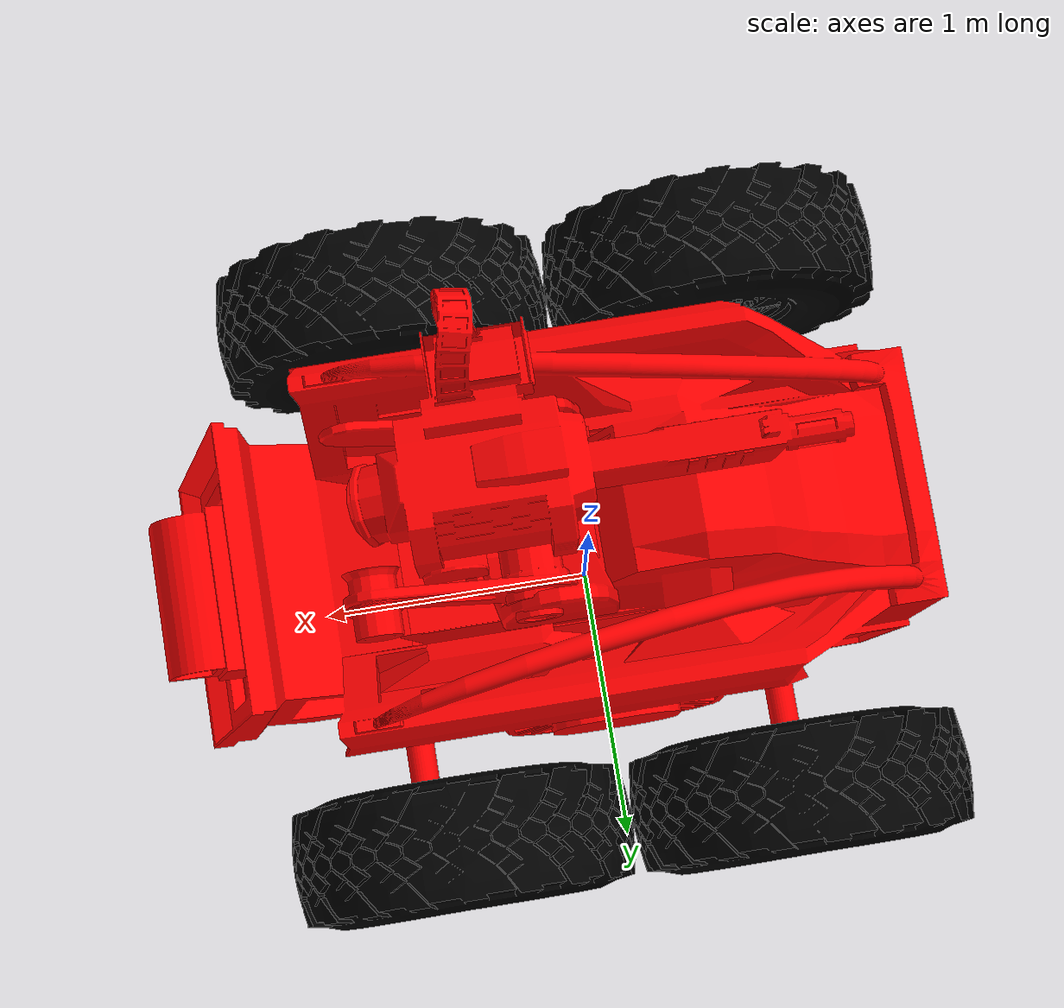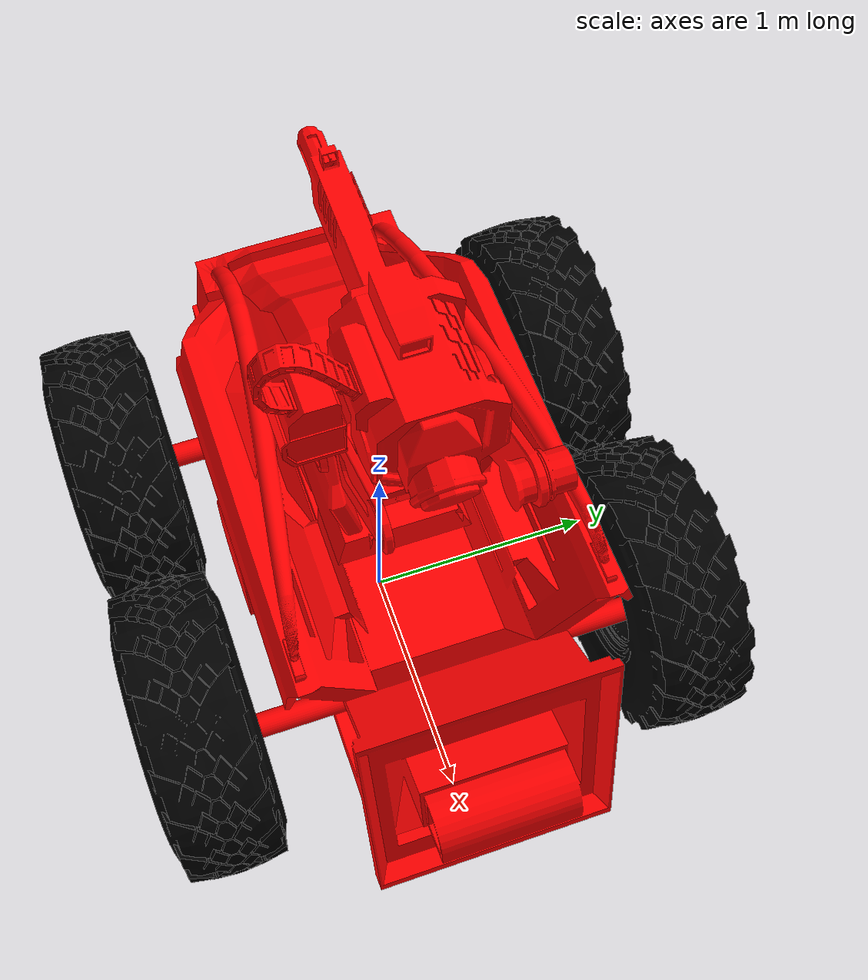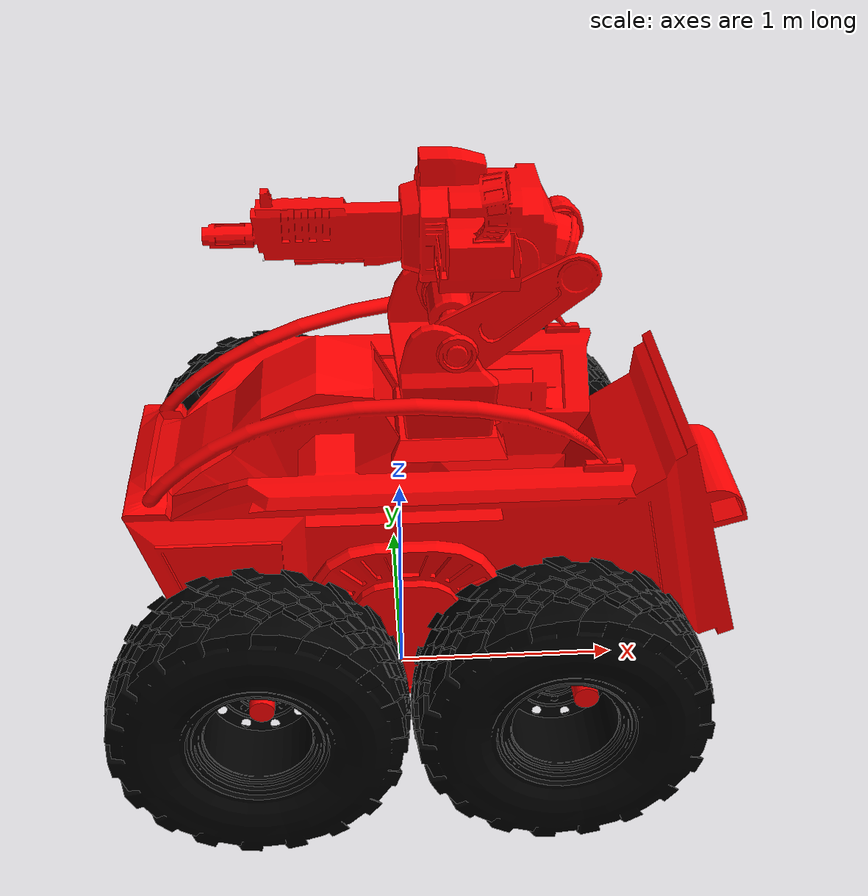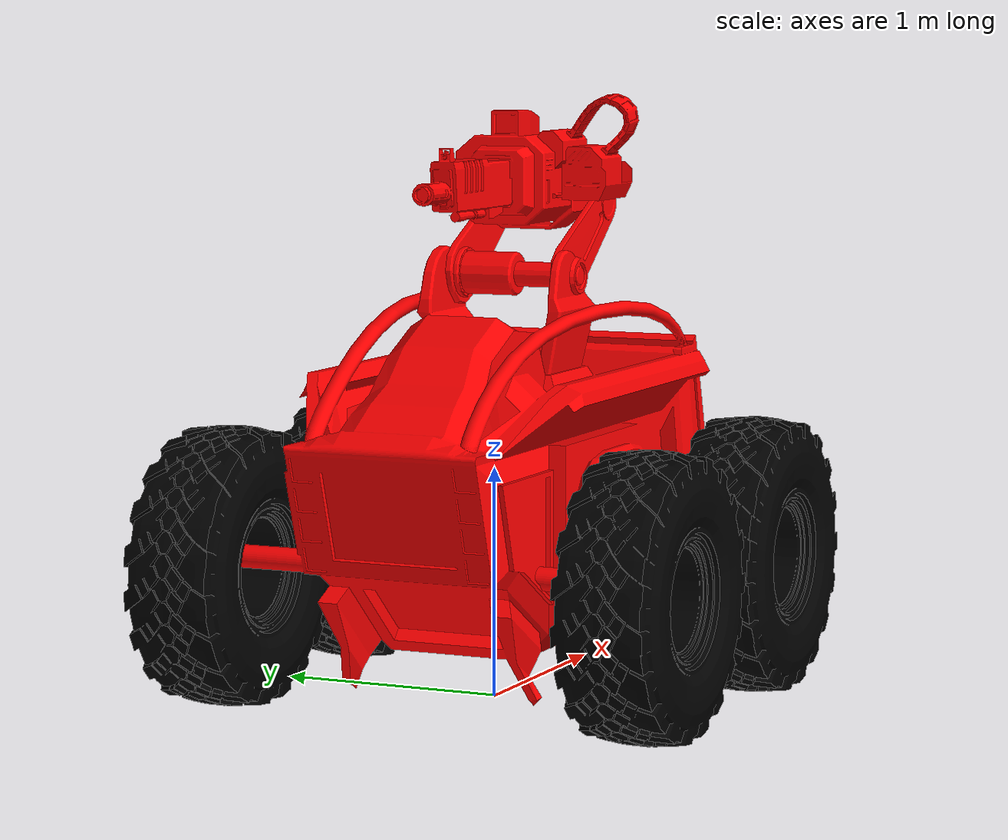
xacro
<?xml version="1.0"?>
<robot xmlns:xacro="http://www.ros.org/wiki/xacro"  name="robot">

    <xacro:include filename="robot_core.urdf.xacro" />
    <xacro:include filename="gazebo_control.xacro" />
    <xacro:include filename="inertial_macros.xacro" />
    <xacro:include filename="joint_public.xacro" />
    <xacro:include filename="turret_transmission.xacro" />
    <xacro:include filename="arm_transmission.xacro" />
    <xacro:include filename="robot_control.urdf.xacro" />
    <xacro:include filename="bullet_transmission.xacro" />
    <xacro:include filename="lidar.xacro" />

    <ros2_control name="gripper_robot_gazebo_system" type="system">
        <hardware>
            <plugin>gazebo_ros2_control/GazeboSystem</plugin>
        </hardware>
        <xacro:arm_transmission/>
        <xacro:turret_transmission/>
        <xacro:bullet_transmission/>
    </ros2_control>
    <xacro:missile_controller/>
</robot>

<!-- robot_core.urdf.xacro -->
<robot xmlns:xacro="http://www.ros.org/wiki/xacro" >

    <xacro:include filename="inertial_macros.xacro" />

    <material name="white">
        <color rgba="1 1 1 1" />
    </material>

    <material name="orange">
        <color rgba="1 0.3 0.1 1"/>
    </material>

    <material name="blue">
        <color rgba="0.2 0.2 1 1"/>
    </material>

    <material name="black">
        <color rgba="0 0 0 1"/>
    </material>

    <material name="red">
        <color rgba="1 0 0 1"/>
    </material>

    <material name="green">
        <color rgba="0 1 1 1"/>
    </material>

<!-- BASE LINK -->

    <link name="base_link">
    </link>

<!-- BASE -->

    <link name="chassis">
        <visual>
            <geometry>
                <mesh filename="file://$(find articubot_one)/description/dae/Base.dae" scale="1 1 1"/>
            </geometry>
            <material name="red"/>
        </visual>
        <collision>
             <geometry>
                <mesh filename="file://$(find articubot_one)/description/dae/Base.dae" scale="1 1 1"/>
             </geometry>
         </collision>
         <xacro:inertial_box mass="100" x="0.4" y="0.4" z="0.06">
             <origin xyz="0 0 0" rpy="0 0 0"/>
         </xacro:inertial_box>
    </link>

    <gazebo reference="chassis">
        <material>Gazebo/Orgy</material>
    </gazebo>

    <joint name="base_footprint_joint" type="fixed">
         <parent link="base_link"/>
         <child link="base_footprint"/>
         <origin xyz="0 0 0" rpy="0 0 0"/>
    </joint>

    <link name="base_footprint"></link>

    <joint name="chassis_joint" type="fixed">
         <parent link="base_link"/>
         <child link="chassis"/>
         <origin xyz="0 0 0.72409"/>
    </joint>

<!-- Right Front Wheel-->

    <joint name="right_front_wheel_joint" type="continuous">
        <parent link="base_link"/>
        <child link="right_front_wheel"/>
        <origin xyz="-0.6007 0.96358 0.5985" rpy="0 0 0"/>
        <axis xyz="0 -1 0"/>
    </joint>

    <link name="right_front_wheel">
        <visual>
            <geometry>
                <mesh filename="file://$(find articubot_one)/description/dae/Front_R_Wheel.dae" scale="1 1 1"/>
            </geometry>
            <material name="black"/>
        </visual>
        <collision>
             <geometry>
                <mesh filename="file://$(find articubot_one)/description/dae/Front_R_Wheel.dae" scale="1 1 1"/>
             </geometry>
         </collision>
         <xacro:inertial_cylinder mass="100" length="0.08" radius="0.4">
            <origin xyz="0 0 0" rpy="0 0 0"/>
         </xacro:inertial_cylinder>
    </link>

    <gazebo reference="right_front_wheel">
        <material>Gazebo/Black</material>
    </gazebo>

<!-- Right Back Wheel -->

    <joint name="right_back_wheel_joint" type="continuous">
        <parent link="base_link"/>
        <child link="right_back_wheel"/>
        <origin xyz="0.6007 0.96358 0.5985" rpy="0 0 0"/>
        <axis xyz="0 -1 0"/>
    </joint>

    <link name="right_back_wheel">
        <visual>
            <geometry>
                <mesh filename="file://$(find articubot_one)/description/dae/Back_R_Wheel.dae" scale="1 1 1"/>
            </geometry>
            <material name="black"/>
        </visual>
        <collision>
             <geometry>
                <mesh filename="file://$(find articubot_one)/description/dae/Back_R_Wheel.dae" scale="1 1 1"/>
             </geometry>
         </collision>
         <xacro:inertial_cylinder mass="20" length="0.08" radius="0.4">
            <origin xyz="0 0 0" rpy="0 0 0"/>
         </xacro:inertial_cylinder>
    </link>

    <gazebo reference="right_back_wheel">
        <material>Gazebo/Black</material>
    </gazebo>

<!-- left Front Wheel -->

    <joint name="left_front_wheel_joint" type="continuous">
        <parent link="base_link"/>
        <child link="left_front_wheel"/>
        <origin xyz="-0.6007 -0.96358 0.5985" rpy="0 0 0"/>
        <axis xyz="0 -1 0"/>
    </joint>

    <link name="left_front_wheel">
        <visual>
            <geometry>
                <mesh filename="file://$(find articubot_one)/description/dae/Front_L_Wheel.dae" scale="1 1 1"/>
            </geometry>
            <material name="black"/>
        </visual>
        <collision>
             <geometry>
                <mesh filename="file://$(find articubot_one)/description/dae/Front_L_Wheel.dae" scale="1 1 1"/>
             </geometry>
         </collision>
         <xacro:inertial_cylinder mass="100" length="0.08" radius="0.4">
            <origin xyz="0 0 0" rpy="0 0 0"/>
         </xacro:inertial_cylinder>
    </link>

    <gazebo reference="left_front_wheel">
        <material>Gazebo/Black</material>
    </gazebo>

<!-- left Back Wheel -->

    <joint name="left_back_wheel_joint" type="continuous">
        <parent link="base_link"/>
        <child link="left_back_wheel"/>
        <origin xyz="0.6007 -0.96358 0.5985" rpy="0 0 0"/>
        <axis xyz="0 -1 0"/>
    </joint>

    <link name="left_back_wheel">
        <visual>
            <geometry>
                <mesh filename="file://$(find articubot_one)/description/dae/Back_L_Wheel.dae" scale="1 1 1"/>
            </geometry>
            <material name="black"/>
        </visual>
        <collision>
             <geometry>
                <mesh filename="file://$(find articubot_one)/description/dae/Back_L_Wheel.dae" scale="1 1 1"/>
             </geometry>
         </collision>
         <xacro:inertial_cylinder mass="20" length="0.08" radius="0.4">
            <origin xyz="0 0 0" rpy="0 0 0"/>
         </xacro:inertial_cylinder>
    </link>

    <gazebo reference="left_back_wheel">
        <material>Gazebo/Black</material>
    </gazebo>

<!-- stand -->

    <link name="stand">
        <visual>
            <geometry>
                <mesh filename="file://$(find articubot_one)/description/dae/Stand.dae" scale="1 1 1"/>
            </geometry>
            <material name="red"/>
        </visual>
        <collision>
             <geometry>
                <mesh filename="file://$(find articubot_one)/description/dae/Stand.dae" scale="1 1 1"/>
             </geometry>
         </collision>
         <xacro:inertial_box mass="10" x="0" y="0" z="1.1241">
             <origin xyz="0 0 0" rpy="0 0 0"/>
         </xacro:inertial_box>
    </link>

    <gazebo reference="stand">
        <material>Gazebo/Orgy</material>
    </gazebo>

    <joint name="stand_joint" type="fixed">
         <parent link="base_link"/>
         <child link="stand"/>
         <origin xyz="0.18542 -0.011125 1.4975" rpy="0 0 0"/>
    </joint>

<!-- Arm -->

    <link name="arm">
        <visual>
            <geometry>
                <mesh filename="file://$(find articubot_one)/description/dae/Arm.dae" scale="1 1 1"/>
            </geometry>
            <material name="red"/>
        </visual>
        <collision>
             <geometry>
                <mesh filename="file://$(find articubot_one)/description/dae/Arm.dae" scale="1 1 1"/>
             </geometry>
         </collision>
         <xacro:inertial_box mass="0.1" x="0" y="0" z="1.1241">
             <origin xyz="0 0 0" rpy="0 0 0"/>
         </xacro:inertial_box>
    </link>

    <gazebo reference="arm">
        <material>Gazebo/Orgy</material>
    </gazebo>

    <joint name="Arm_joint" type="revolute">
         <parent link="stand"/>
         <child link="arm"/>
         <origin xyz="0.04027 -0.286235 0.3244" rpy="0 0 0"/>
         <axis xyz="0 1 0"/>
         <limit lower="-0.785" upper="0" effort="100" velocity="1"/>
    </joint>

<!-- Turret -->

    <link name="turret">
        <visual>
            <geometry>
                <mesh filename="file://$(find articubot_one)/description/dae/Turret.dae" scale="1 1 1"/>
            </geometry>
            <material name="red"/>
        </visual>
        <collision>
             <geometry>
                <mesh filename="file://$(find articubot_one)/description/dae/Turret.dae" scale="1 1 1"/>
             </geometry>
         </collision>
         <xacro:inertial_box mass="0.1" x="0" y="0" z="1.1241">
             <origin xyz="0 0 0" rpy="0 0 0"/>
         </xacro:inertial_box>
    </link>

    <gazebo reference="turret">
        <material>Gazebo/Orgy</material>
    </gazebo>

    <joint name="turret_joint" type="revolute">
         <parent link="arm"/>
         <child link="turret"/>
         <origin xyz="0.21935 0.26709 0.3599" rpy="0 0 0"/>
         <axis xyz="0 1 0"/>
         <limit lower="0" upper="0.785" effort="100" velocity="1"/>
    </joint>

<!-- Bullet -->

    <link name="Bullet">
        <visual>
            <geometry>
                <mesh filename="file://$(find articubot_one)/description/dae/Bullet.dae" scale="1 1 1"/>
            </geometry>
            <material name="red"/>
        </visual>
        <collision>
             <geometry>
                <mesh filename="file://$(find articubot_one)/description/dae/Bullet.dae" scale="1 1 1"/>
             </geometry>
         </collision>
         <xacro:inertial_box mass="0.1" x="0" y="0" z="1.1241">
             <origin xyz="0 0 0" rpy="0 0 0"/>
         </xacro:inertial_box>
    </link>

    <gazebo reference="Bullet">
        <material>Gazebo/Red</material>
    </gazebo>

    <joint name="Bullet_joint" type="prismatic">
         <parent link="turret"/>
         <child link="Bullet"/>
         <origin xyz="-0.91576 0.024507 -0.021537" rpy="0 0 0"/>
         <axis xyz="-1 0 0"/>
         <limit lower="10" upper="0" effort="100" velocity="1"/>
    </joint>

</robot>

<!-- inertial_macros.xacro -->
<robot xmlns:xacro="http://www.ros.org/wiki/xacro" >

    <!-- Specify some standard inertial
    calculations https://en.wikipedia.org/wiki/List_of_moments_of_inertia -->
    <!-- These make use of xacro's mathematical functionality -->

    <!-- กำหนดคุณลักษณะวัตถุ เป็น ทรงกลม -->
    <xacro:macro name="inertial_sphere" params="mass radius *origin">
        <inertial>
            <xacro:insert_block name="origin"/>
            <mass value="${mass}" />
            <inertia ixx="${(2/5) * mass * (radius*radius)}" ixy="0.0" ixz="0.0"
                    iyy="${(2/5) * mass * (radius*radius)}" iyz="0.0"
                    izz="${(2/5) * mass * (radius*radius)}" />
        </inertial>
    </xacro:macro>

    <!-- กำหนดคุณลักษณะวัตถุ เป็น กล่อง -->
    <xacro:macro name="inertial_box" params="mass x y z *origin">
        <inertial>
            <xacro:insert_block name="origin"/>
            <mass value="${mass}" />
            <inertia ixx="${(1/12) * mass * (y*y+z*z)}" ixy="0.0" ixz="0.0"
                    iyy="${(1/12) * mass * (x*x+z*z)}" iyz="0.0"
                    izz="${(1/12) * mass * (x*x+y*y)}" />
        </inertial>
    </xacro:macro>

    <!-- กำหนดคุณลักษณะวัตถุ เป็นทรงกระบอก -->
    <xacro:macro name="inertial_cylinder" params="mass length radius *origin">
        <inertial>
            <xacro:insert_block name="origin"/>
            <mass value="${mass}" />
            <inertia ixx="${(1/12) * mass * (3*radius*radius + length*length)}" ixy="0.0" ixz="0.0"
                    iyy="${(1/12) * mass * (3*radius*radius + length*length)}" iyz="0.0"
                    izz="${(1/2) * mass * (radius*radius)}" />
        </inertial>
    </xacro:macro>

</robot>

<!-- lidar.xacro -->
<robot xmlns:xacro="http://www.ros.org/wiki/xacro" >

    <joint name="laser_joint" type="fixed">
        <parent link="turret"/>
        <child link="laser"/>
        <origin xyz="-0.96154 0 -0.062826" rpy="0 0 0"/>
    </joint>

    <link name="laser">
        <visual>
            <geometry>
                <cylinder radius="0.005" length="0.004"/>
            </geometry>
            <material name="white"/>
        </visual>
        <collision>
            <geometry>
                <cylinder radius="0.005" length="0.004"/>
            </geometry>
        </collision>
        <xacro:inertial_cylinder mass="0.1" length="0.025" radius="0.05">
            <origin xyz="0 0 0" rpy="0 0 0"/>
        </xacro:inertial_cylinder>
    </link>

    <gazebo reference="laser">
        <material>Gazebo/White</material>

        <sensor name="laser" type="ray">
            <pose> 0 0 0 0 0 0 </pose>
            <visualize>true</visualize>
            <update_rate>10</update_rate>
            <ray>
                <scan>
                    <horizontal>
                        <samples>360</samples>
                        <min_angle>-2.355</min_angle>
                        <max_angle>-3.925</max_angle>
                    </horizontal>
                </scan>
                <range>
                    <min>0.3</min>
                    <max>12</max>
                </range>
            </ray>

            <plugin name="laser_controller" filename="libgazebo_ros_ray_sensor.so">
                <ros>
                    <argument>~/out:=scan</argument>
                </ros>
                <output_type>sensor_msgs/LaserScan</output_type>
                <frame_name>laser</frame_name>
            </plugin>
        </sensor>
    </gazebo>

</robot>
